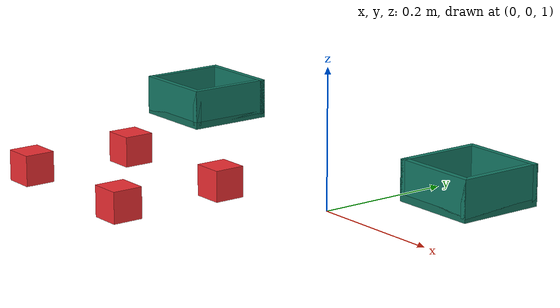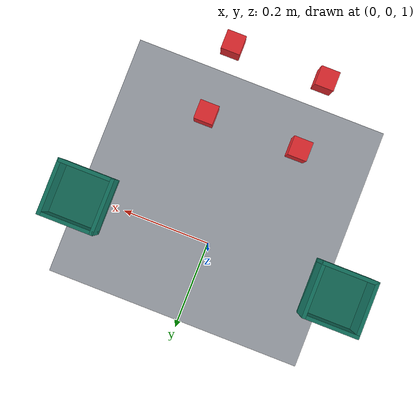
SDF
<sdf version="1.6">
 <world name="ur3e_pick_place_world">
  <gravity>0 0 -9.81</gravity>
  <physics name="default_physics" type="ode">
   <max_step_size>0.001</max_step_size>
   <real_time_factor>1.0</real_time_factor>
   <real_time_update_rate>1000</real_time_update_rate>
  </physics>
  <scene>
   <ambient>0.42 0.42 0.42 1</ambient>
   <background>0.78 0.82 0.88 1</background>
   <shadows>true</shadows>
  </scene>
  <light name="sun" type="directional">
   <pose>0 0 10 0 0 0</pose>
   <diffuse>0.8 0.8 0.8 1</diffuse>
   <specular>0.2 0.2 0.2 1</specular>
   <attenuation>
    <range>1000</range>
    <constant>0.9</constant>
    <linear>0.01</linear>
    <quadratic>0.001</quadratic>
   </attenuation>
   <direction>-0.5 0.1 -0.9</direction>
  </light>
  <model name="ground_plane">
   <static>true</static>
   <link name="ground_link">
    <collision name="collision">
     <geometry><plane><normal>0 0 1</normal><size>5 5</size></plane></geometry>
    </collision>
    <visual name="visual">
     <geometry><plane><normal>0 0 1</normal><size>5 5</size></plane></geometry>
     <material><ambient>0.55 0.57 0.60 1</ambient><diffuse>0.65 0.67 0.70 1</diffuse></material>
    </visual>
   </link>
  </model>
  <include><name>cube_1</name><uri>model://cube</uri><pose>0.1 -0.40 1.11 0 0 0</pose></include>
  <include><name>cube_2</name><uri>model://cube</uri><pose>0.1 -0.25 1.11 0 0 0</pose></include>
  <include><name>cube_3</name><uri>model://cube</uri><pose>-0.1 -0.25 1.11 0 0 0</pose></include>
  <include><name>cube_4</name><uri>model://cube</uri><pose>-0.1 -0.40 1.11 0 0 0</pose></include>
  <include><name>bin_1</name><uri>model://place_bin</uri><pose>0.28 0.0 1.078 0 0 0</pose></include>
  <include><name>bin_2</name><uri>model://place_bin</uri><pose>-0.28 0.0 1.078 0 0 0</pose></include>
 </world>
</sdf>

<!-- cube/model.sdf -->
<sdf version="1.6">
  <model name="cube">
    <static>false</static>
    <allow_auto_disable>false</allow_auto_disable>
    <link name="cube_link">
      <inertial>
        <mass>0.05</mass>
        <inertia>
          <ixx>1.333e-5</ixx>
          <iyy>1.333e-5</iyy>
          <izz>1.333e-5</izz>
          <ixy>0</ixy>
          <ixz>0</ixz>
          <iyz>0</iyz>
        </inertia>
      </inertial>
      <collision name="collision">
        <geometry>
          <box>
            <size>0.04 0.04 0.04</size>
          </box>
        </geometry>
        <surface>
          <friction>
            <ode>
              <mu>0.8</mu>
              <mu2>0.8</mu2>
            </ode>
          </friction>
        </surface>
      </collision>
      <visual name="visual">
        <geometry>
          <box>
            <size>0.04 0.04 0.04</size>
          </box>
        </geometry>
        <material>
          <ambient>0.86 0.10 0.12 1</ambient>
          <diffuse>0.95 0.18 0.20 1</diffuse>
          <specular>0.12 0.04 0.04 1</specular>
        </material>
      </visual>
    </link>
  </model>
</sdf>

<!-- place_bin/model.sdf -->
<sdf version="1.6">
  <model name="place_bin">
    <static>true</static>
    <link name="bin_link">
      <collision name="base_collision">
        <pose>0 0 0.005 0 0 0</pose>
        <geometry><box><size>0.12 0.12 0.01</size></box></geometry>
      </collision>
      <visual name="base_visual">
        <pose>0 0 0.005 0 0 0</pose>
        <geometry><box><size>0.12 0.12 0.01</size></box></geometry>
        <material><ambient>0.05 0.24 0.20 1</ambient><diffuse>0.08 0.44 0.36 1</diffuse></material>
      </visual>

      <collision name="front_wall_collision">
        <pose>0 -0.056 0.03 0 0 0</pose>
        <geometry><box><size>0.12 0.008 0.05</size></box></geometry>
      </collision>
      <visual name="front_wall_visual">
        <pose>0 -0.056 0.03 0 0 0</pose>
        <geometry><box><size>0.12 0.008 0.05</size></box></geometry>
        <material><ambient>0.05 0.26 0.22 0.92</ambient><diffuse>0.08 0.48 0.40 0.92</diffuse></material>
      </visual>

      <collision name="back_wall_collision">
        <pose>0 0.056 0.03 0 0 0</pose>
        <geometry><box><size>0.12 0.008 0.05</size></box></geometry>
      </collision>
      <visual name="back_wall_visual">
        <pose>0 0.056 0.03 0 0 0</pose>
        <geometry><box><size>0.12 0.008 0.05</size></box></geometry>
        <material><ambient>0.05 0.26 0.22 0.92</ambient><diffuse>0.08 0.48 0.40 0.92</diffuse></material>
      </visual>

      <collision name="left_wall_collision">
        <pose>-0.056 0 0.03 0 0 0</pose>
        <geometry><box><size>0.008 0.12 0.05</size></box></geometry>
      </collision>
      <visual name="left_wall_visual">
        <pose>-0.056 0 0.03 0 0 0</pose>
        <geometry><box><size>0.008 0.12 0.05</size></box></geometry>
        <material><ambient>0.05 0.26 0.22 0.92</ambient><diffuse>0.08 0.48 0.40 0.92</diffuse></material>
      </visual>

      <collision name="right_wall_collision">
        <pose>0.056 0 0.03 0 0 0</pose>
        <geometry><box><size>0.008 0.12 0.05</size></box></geometry>
      </collision>
      <visual name="right_wall_visual">
        <pose>0.056 0 0.03 0 0 0</pose>
        <geometry><box><size>0.008 0.12 0.05</size></box></geometry>
        <material><ambient>0.05 0.26 0.22 0.92</ambient><diffuse>0.08 0.48 0.40 0.92</diffuse></material>
      </visual>
    </link>
  </model>
</sdf>
